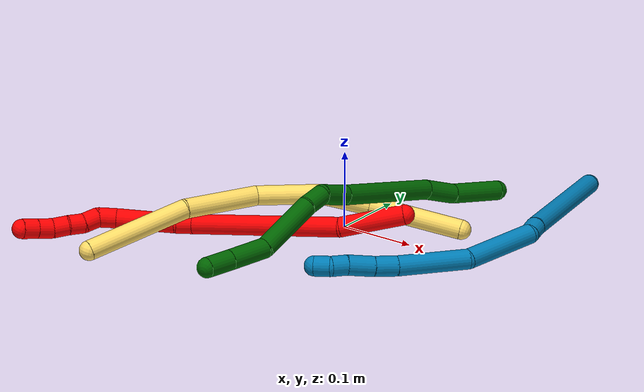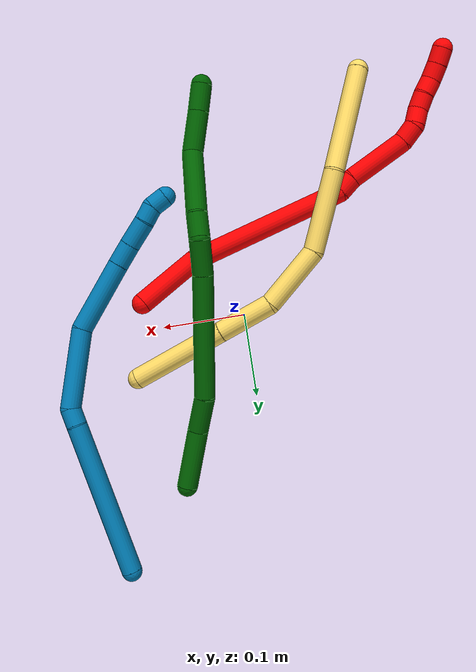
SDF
<sdf version="1.7">
 <world name="default">
  <model name="2">
   <static>0</static>
   <link name="2">
    <collision name="collision-cylinder-e_1_1_4">
     <pose>-0.026386 0.002567 0.030684 -0.083461 -0.708506 0.030884</pose>
     <geometry><cylinder><radius>0.0125</radius><length>0.081099</length></cylinder></geometry>
     <surface>
      <friction><ode><mu>1.16</mu><mu2>1.16</mu2><slip1>0</slip1><slip2>0</slip2></ode></friction>
      <contact><ode><kp>1e+06</kp><kd>1</kd><max_vel>0</max_vel><min_depth>0.001</min_depth></ode></contact>
     </surface>
    </collision>
    <visual name="visual-cylinder-e_1_1_4">
     <pose>-0.026386 0.002567 0.030684 -0.083461 -0.708506 0.030884</pose>
     <geometry><cylinder><radius>0.0125</radius><length>0.081099</length></cylinder></geometry>
     <material><ambient>1 0 0 1</ambient></material>
    </visual>
    <collision name="collision-cylinder-e_2_4_5">
     <pose>-0.094091 0.0217 0.14938 -0.186047 -0.432267 0.040962</pose>
     <geometry><cylinder><radius>0.0125</radius><length>0.197261</length></cylinder></geometry>
     <surface>
      <friction><ode><mu>1.16</mu><mu2>1.16</mu2><slip1>0</slip1><slip2>0</slip2></ode></friction>
      <contact><ode><kp>1e+06</kp><kd>1</kd><max_vel>0</max_vel><min_depth>0.001</min_depth></ode></contact>
     </surface>
    </collision>
    <visual name="visual-cylinder-e_2_4_5">
     <pose>-0.094091 0.0217 0.14938 -0.186047 -0.432267 0.040962</pose>
     <geometry><cylinder><radius>0.0125</radius><length>0.197261</length></cylinder></geometry>
     <material><ambient>1 0 0 1</ambient></material>
    </visual>
    <collision name="collision-cylinder-e_3_5_6">
     <pose>-0.141356 0.035654 0.246101 0.29137 -0.579216 -0.087388</pose>
     <geometry><cylinder><radius>0.0125</radius><length>0.021726</length></cylinder></geometry>
     <surface>
      <friction><ode><mu>1.16</mu><mu2>1.16</mu2><slip1>0</slip1><slip2>0</slip2></ode></friction>
      <contact><ode><kp>1e+06</kp><kd>1</kd><max_vel>0</max_vel><min_depth>0.001</min_depth></ode></contact>
     </surface>
    </collision>
    <visual name="visual-cylinder-e_3_5_6">
     <pose>-0.141356 0.035654 0.246101 0.29137 -0.579216 -0.087388</pose>
     <geometry><cylinder><radius>0.0125</radius><length>0.021726</length></cylinder></geometry>
     <material><ambient>1 0 0 1</ambient></material>
    </visual>
    <collision name="collision-cylinder-e_4_6_7">
     <pose>-0.164246 0.030833 0.28858 0.065351 -0.464169 -0.01545</pose>
     <geometry><cylinder><radius>0.0125</radius><length>0.075695</length></cylinder></geometry>
     <surface>
      <friction><ode><mu>1.16</mu><mu2>1.16</mu2><slip1>0</slip1><slip2>0</slip2></ode></friction>
      <contact><ode><kp>1e+06</kp><kd>1</kd><max_vel>0</max_vel><min_depth>0.001</min_depth></ode></contact>
     </surface>
    </collision>
    <visual name="visual-cylinder-e_4_6_7">
     <pose>-0.164246 0.030833 0.28858 0.065351 -0.464169 -0.01545</pose>
     <geometry><cylinder><radius>0.0125</radius><length>0.075695</length></cylinder></geometry>
     <material><ambient>1 0 0 1</ambient></material>
    </visual>
    <collision name="collision-cylinder-e_5_7_8">
     <pose>-0.18769 0.024674 0.331346 0.413641 -0.584571 -0.126104</pose>
     <geometry><cylinder><radius>0.0125</radius><length>0.023559</length></cylinder></geometry>
     <surface>
      <friction><ode><mu>1.16</mu><mu2>1.16</mu2><slip1>0</slip1><slip2>0</slip2></ode></friction>
      <contact><ode><kp>1e+06</kp><kd>1</kd><max_vel>0</max_vel><min_depth>0.001</min_depth></ode></contact>
     </surface>
    </collision>
    <visual name="visual-cylinder-e_5_7_8">
     <pose>-0.18769 0.024674 0.331346 0.413641 -0.584571 -0.126104</pose>
     <geometry><cylinder><radius>0.0125</radius><length>0.023559</length></cylinder></geometry>
     <material><ambient>1 0 0 1</ambient></material>
    </visual>
    <collision name="collision-cylinder-e_6_8_9">
     <pose>-0.203056 0.017227 0.344287 0.725324 -1.0341 -0.425028</pose>
     <geometry><cylinder><radius>0.0125</radius><length>0.020632</length></cylinder></geometry>
     <surface>
      <friction><ode><mu>1.16</mu><mu2>1.16</mu2><slip1>0</slip1><slip2>0</slip2></ode></friction>
      <contact><ode><kp>1e+06</kp><kd>1</kd><max_vel>0</max_vel><min_depth>0.001</min_depth></ode></contact>
     </surface>
    </collision>
    <visual name="visual-cylinder-e_6_8_9">
     <pose>-0.203056 0.017227 0.344287 0.725324 -1.0341 -0.425028</pose>
     <geometry><cylinder><radius>0.0125</radius><length>0.020632</length></cylinder></geometry>
     <material><ambient>1 0 0 1</ambient></material>
    </visual>
    <collision name="collision-cylinder-e_7_9_10">
     <pose>-0.218926 0.009168 0.353744 0.691304 -0.774996 -0.291855</pose>
     <geometry><cylinder><radius>0.0125</radius><length>0.020022</length></cylinder></geometry>
     <surface>
      <friction><ode><mu>1.16</mu><mu2>1.16</mu2><slip1>0</slip1><slip2>0</slip2></ode></friction>
      <contact><ode><kp>1e+06</kp><kd>1</kd><max_vel>0</max_vel><min_depth>0.001</min_depth></ode></contact>
     </surface>
    </collision>
    <visual name="visual-cylinder-e_7_9_10">
     <pose>-0.218926 0.009168 0.353744 0.691304 -0.774996 -0.291855</pose>
     <geometry><cylinder><radius>0.0125</radius><length>0.020022</length></cylinder></geometry>
     <material><ambient>1 0 0 1</ambient></material>
    </visual>
    <collision name="collision-cylinder-e_8_10_11">
     <pose>-0.233381 0.001555 0.365188 0.475139 -0.840381 -0.21554</pose>
     <geometry><cylinder><radius>0.0125</radius><length>0.020003</length></cylinder></geometry>
     <surface>
      <friction><ode><mu>1.16</mu><mu2>1.16</mu2><slip1>0</slip1><slip2>0</slip2></ode></friction>
      <contact><ode><kp>1e+06</kp><kd>1</kd><max_vel>0</max_vel><min_depth>0.001</min_depth></ode></contact>
     </surface>
    </collision>
    <visual name="visual-cylinder-e_8_10_11">
     <pose>-0.233381 0.001555 0.365188 0.475139 -0.840381 -0.21554</pose>
     <geometry><cylinder><radius>0.0125</radius><length>0.020003</length></cylinder></geometry>
     <material><ambient>1 0 0 1</ambient></material>
    </visual>
    <collision name="collision-cylinder-e_9_11_12">
     <pose>-0.247023 -0.00666 0.377039 0.717364 -0.667672 -0.258592</pose>
     <geometry><cylinder><radius>0.0125</radius><length>0.020001</length></cylinder></geometry>
     <surface>
      <friction><ode><mu>1.16</mu><mu2>1.16</mu2><slip1>0</slip1><slip2>0</slip2></ode></friction>
      <contact><ode><kp>1e+06</kp><kd>1</kd><max_vel>0</max_vel><min_depth>0.001</min_depth></ode></contact>
     </surface>
    </collision>
    <visual name="visual-cylinder-e_9_11_12">
     <pose>-0.247023 -0.00666 0.377039 0.717364 -0.667672 -0.258592</pose>
     <geometry><cylinder><radius>0.0125</radius><length>0.020001</length></cylinder></geometry>
     <material><ambient>1 0 0 1</ambient></material>
    </visual>
    <collision name="collision-cylinder-e_10_12_2">
     <pose>-0.259456 -0.017432 0.388398 0.80069 -0.673875 -0.294346</pose>
     <geometry><cylinder><radius>0.0125</radius><length>0.020001</length></cylinder></geometry>
     <surface>
      <friction><ode><mu>1.16</mu><mu2>1.16</mu2><slip1>0</slip1><slip2>0</slip2></ode></friction>
      <contact><ode><kp>1e+06</kp><kd>1</kd><max_vel>0</max_vel><min_depth>0.001</min_depth></ode></contact>
     </surface>
    </collision>
    <visual name="visual-cylinder-e_10_12_2">
     <pose>-0.259456 -0.017432 0.388398 0.80069 -0.673875 -0.294346</pose>
     <geometry><cylinder><radius>0.0125</radius><length>0.020001</length></cylinder></geometry>
     <material><ambient>1 0 0 1</ambient></material>
    </visual>
    <collision name="collision-sphere-2">
     <pose>-0.265696 -0.023042 0.393838 0 -0 0</pose>
     <geometry><sphere><radius>0.0125</radius></sphere></geometry>
     <surface>
      <friction><ode><mu>1.16</mu><mu2>1.16</mu2><slip1>0</slip1><slip2>0</slip2></ode></friction>
      <contact><ode><kp>1e+06</kp><kd>1</kd><max_vel>0</max_vel><min_depth>0.001</min_depth></ode></contact>
     </surface>
    </collision>
    <visual name="visual-sphere-2">
     <pose>-0.265696 -0.023042 0.393838 0 -0 0</pose>
     <geometry><sphere><radius>0.0125</radius></sphere></geometry>
     <material><ambient>1 0 0 1</ambient></material>
    </visual>
    <collision name="collision-sphere-12">
     <pose>-0.253215 -0.011822 0.382957 0 -0 0</pose>
     <geometry><sphere><radius>0.0125</radius></sphere></geometry>
     <surface>
      <friction><ode><mu>1.16</mu><mu2>1.16</mu2><slip1>0</slip1><slip2>0</slip2></ode></friction>
      <contact><ode><kp>1e+06</kp><kd>1</kd><max_vel>0</max_vel><min_depth>0.001</min_depth></ode></contact>
     </surface>
    </collision>
    <visual name="visual-sphere-12">
     <pose>-0.253215 -0.011822 0.382957 0 -0 0</pose>
     <geometry><sphere><radius>0.0125</radius></sphere></geometry>
     <material><ambient>1 0 0 1</ambient></material>
    </visual>
    <collision name="collision-sphere-11">
     <pose>-0.240831 -0.001497 0.371122 0 -0 0</pose>
     <geometry><sphere><radius>0.0125</radius></sphere></geometry>
     <surface>
      <friction><ode><mu>1.16</mu><mu2>1.16</mu2><slip1>0</slip1><slip2>0</slip2></ode></friction>
      <contact><ode><kp>1e+06</kp><kd>1</kd><max_vel>0</max_vel><min_depth>0.001</min_depth></ode></contact>
     </surface>
    </collision>
    <visual name="visual-sphere-11">
     <pose>-0.240831 -0.001497 0.371122 0 -0 0</pose>
     <geometry><sphere><radius>0.0125</radius></sphere></geometry>
     <material><ambient>1 0 0 1</ambient></material>
    </visual>
    <collision name="collision-sphere-10">
     <pose>-0.225931 0.004608 0.359255 0 -0 0</pose>
     <geometry><sphere><radius>0.0125</radius></sphere></geometry>
     <surface>
      <friction><ode><mu>1.16</mu><mu2>1.16</mu2><slip1>0</slip1><slip2>0</slip2></ode></friction>
      <contact><ode><kp>1e+06</kp><kd>1</kd><max_vel>0</max_vel><min_depth>0.001</min_depth></ode></contact>
     </surface>
    </collision>
    <visual name="visual-sphere-10">
     <pose>-0.225931 0.004608 0.359255 0 -0 0</pose>
     <geometry><sphere><radius>0.0125</radius></sphere></geometry>
     <material><ambient>1 0 0 1</ambient></material>
    </visual>
    <collision name="collision-sphere-9">
     <pose>-0.211921 0.013727 0.348234 0 -0 0</pose>
     <geometry><sphere><radius>0.0125</radius></sphere></geometry>
     <surface>
      <friction><ode><mu>1.16</mu><mu2>1.16</mu2><slip1>0</slip1><slip2>0</slip2></ode></friction>
      <contact><ode><kp>1e+06</kp><kd>1</kd><max_vel>0</max_vel><min_depth>0.001</min_depth></ode></contact>
     </surface>
    </collision>
    <visual name="visual-sphere-9">
     <pose>-0.211921 0.013727 0.348234 0 -0 0</pose>
     <geometry><sphere><radius>0.0125</radius></sphere></geometry>
     <material><ambient>1 0 0 1</ambient></material>
    </visual>
    <collision name="collision-sphere-4">
     <pose>-0.052771 0.005134 0.061367 0 -0 0</pose>
     <geometry><sphere><radius>0.0125</radius></sphere></geometry>
     <surface>
      <friction><ode><mu>1.16</mu><mu2>1.16</mu2><slip1>0</slip1><slip2>0</slip2></ode></friction>
      <contact><ode><kp>1e+06</kp><kd>1</kd><max_vel>0</max_vel><min_depth>0.001</min_depth></ode></contact>
     </surface>
    </collision>
    <visual name="visual-sphere-4">
     <pose>-0.052771 0.005134 0.061367 0 -0 0</pose>
     <geometry><sphere><radius>0.0125</radius></sphere></geometry>
     <material><ambient>1 0 0 1</ambient></material>
    </visual>
    <collision name="collision-sphere-1">
     <geometry><sphere><radius>0.0125</radius></sphere></geometry>
     <surface>
      <friction><ode><mu>1.16</mu><mu2>1.16</mu2><slip1>0</slip1><slip2>0</slip2></ode></friction>
      <contact><ode><kp>1e+06</kp><kd>1</kd><max_vel>0</max_vel><min_depth>0.001</min_depth></ode></contact>
     </surface>
    </collision>
    <visual name="visual-sphere-1">
     <geometry><sphere><radius>0.0125</radius></sphere></geometry>
     <material><ambient>1 0 0 1</ambient></material>
    </visual>
    <collision name="collision-sphere-8">
     <pose>-0.19419 0.020726 0.340341 0 -0 0</pose>
     <geometry><sphere><radius>0.0125</radius></sphere></geometry>
     <surface>
      <friction><ode><mu>1.16</mu><mu2>1.16</mu2><slip1>0</slip1><slip2>0</slip2></ode></friction>
      <contact><ode><kp>1e+06</kp><kd>1</kd><max_vel>0</max_vel><min_depth>0.001</min_depth></ode></contact>
     </surface>
    </collision>
    <visual name="visual-sphere-8">
     <pose>-0.19419 0.020726 0.340341 0 -0 0</pose>
     <geometry><sphere><radius>0.0125</radius></sphere></geometry>
     <material><ambient>1 0 0 1</ambient></material>
    </visual>
    <collision name="collision-sphere-5">
     <pose>-0.13541 0.038266 0.237393 0 -0 0</pose>
     <geometry><sphere><radius>0.0125</radius></sphere></geometry>
     <surface>
      <friction><ode><mu>1.16</mu><mu2>1.16</mu2><slip1>0</slip1><slip2>0</slip2></ode></friction>
      <contact><ode><kp>1e+06</kp><kd>1</kd><max_vel>0</max_vel><min_depth>0.001</min_depth></ode></contact>
     </surface>
    </collision>
    <visual name="visual-sphere-5">
     <pose>-0.13541 0.038266 0.237393 0 -0 0</pose>
     <geometry><sphere><radius>0.0125</radius></sphere></geometry>
     <material><ambient>1 0 0 1</ambient></material>
    </visual>
    <collision name="collision-sphere-6">
     <pose>-0.147302 0.033043 0.254809 0 -0 0</pose>
     <geometry><sphere><radius>0.0125</radius></sphere></geometry>
     <surface>
      <friction><ode><mu>1.16</mu><mu2>1.16</mu2><slip1>0</slip1><slip2>0</slip2></ode></friction>
      <contact><ode><kp>1e+06</kp><kd>1</kd><max_vel>0</max_vel><min_depth>0.001</min_depth></ode></contact>
     </surface>
    </collision>
    <visual name="visual-sphere-6">
     <pose>-0.147302 0.033043 0.254809 0 -0 0</pose>
     <geometry><sphere><radius>0.0125</radius></sphere></geometry>
     <material><ambient>1 0 0 1</ambient></material>
    </visual>
    <collision name="collision-sphere-7">
     <pose>-0.181189 0.028623 0.322351 0 -0 0</pose>
     <geometry><sphere><radius>0.0125</radius></sphere></geometry>
     <surface>
      <friction><ode><mu>1.16</mu><mu2>1.16</mu2><slip1>0</slip1><slip2>0</slip2></ode></friction>
      <contact><ode><kp>1e+06</kp><kd>1</kd><max_vel>0</max_vel><min_depth>0.001</min_depth></ode></contact>
     </surface>
    </collision>
    <visual name="visual-sphere-7">
     <pose>-0.181189 0.028623 0.322351 0 -0 0</pose>
     <geometry><sphere><radius>0.0125</radius></sphere></geometry>
     <material><ambient>1 0 0 1</ambient></material>
    </visual>
    <inertial>
     <pose>-0.127994 0.016533 0.207506 0 -0 0</pose>
     <mass>0.5</mass>
     <inertia>
      <ixx>0.000668</ixx>
      <ixy>0</ixy>
      <ixz>0</ixz>
      <iyy>0.000755</iyy>
      <iyz>0</iyz>
      <izz>0.000253</izz>
     </inertia>
    </inertial>
   </link>
   <pose>0.114865 -0.032076 0.054781 -1.16945 -0.700282 1.3952</pose>
  </model>
  <model name="5">
   <static>0</static>
   <link name="5">
    <collision name="collision-cylinder-e_1_1_4">
     <pose>-0.005665 -0.00168 0.058565 0.028677 -0.096385 -0.001383</pose>
     <geometry><cylinder><radius>0.0125</radius><length>0.117725</length></cylinder></geometry>
     <surface>
      <friction><ode><mu>1.16</mu><mu2>1.16</mu2><slip1>0</slip1><slip2>0</slip2></ode></friction>
      <contact><ode><kp>1e+06</kp><kd>1</kd><max_vel>0</max_vel><min_depth>0.001</min_depth></ode></contact>
     </surface>
    </collision>
    <visual name="visual-cylinder-e_1_1_4">
     <pose>-0.005665 -0.00168 0.058565 0.028677 -0.096385 -0.001383</pose>
     <geometry><cylinder><radius>0.0125</radius><length>0.117725</length></cylinder></geometry>
     <material><ambient>1 0.858824 0.4 1</ambient></material>
    </visual>
    <collision name="collision-cylinder-e_2_4_5">
     <pose>-0.015775 -0.004061 0.150837 0.020794 -0.131103 -0.001365</pose>
     <geometry><cylinder><radius>0.0125</radius><length>0.068011</length></cylinder></geometry>
     <surface>
      <friction><ode><mu>1.16</mu><mu2>1.16</mu2><slip1>0</slip1><slip2>0</slip2></ode></friction>
      <contact><ode><kp>1e+06</kp><kd>1</kd><max_vel>0</max_vel><min_depth>0.001</min_depth></ode></contact>
     </surface>
    </collision>
    <visual name="visual-cylinder-e_2_4_5">
     <pose>-0.015775 -0.004061 0.150837 0.020794 -0.131103 -0.001365</pose>
     <geometry><cylinder><radius>0.0125</radius><length>0.068011</length></cylinder></geometry>
     <material><ambient>1 0.858824 0.4 1</ambient></material>
    </visual>
    <collision name="collision-cylinder-e_3_5_6">
     <pose>-0.03278 -0.01836 0.220075 0.365504 -0.31887 -0.059419</pose>
     <geometry><cylinder><radius>0.0125</radius><length>0.08013</length></cylinder></geometry>
     <surface>
      <friction><ode><mu>1.16</mu><mu2>1.16</mu2><slip1>0</slip1><slip2>0</slip2></ode></friction>
      <contact><ode><kp>1e+06</kp><kd>1</kd><max_vel>0</max_vel><min_depth>0.001</min_depth></ode></contact>
     </surface>
    </collision>
    <visual name="visual-cylinder-e_3_5_6">
     <pose>-0.03278 -0.01836 0.220075 0.365504 -0.31887 -0.059419</pose>
     <geometry><cylinder><radius>0.0125</radius><length>0.08013</length></cylinder></geometry>
     <material><ambient>1 0.858824 0.4 1</ambient></material>
    </visual>
    <collision name="collision-cylinder-e_4_6_7">
     <pose>-0.061701 -0.066654 0.287227 0.831745 -0.335351 -0.149228</pose>
     <geometry><cylinder><radius>0.0125</radius><length>0.099423</length></cylinder></geometry>
     <surface>
      <friction><ode><mu>1.16</mu><mu2>1.16</mu2><slip1>0</slip1><slip2>0</slip2></ode></friction>
      <contact><ode><kp>1e+06</kp><kd>1</kd><max_vel>0</max_vel><min_depth>0.001</min_depth></ode></contact>
     </surface>
    </collision>
    <visual name="visual-cylinder-e_4_6_7">
     <pose>-0.061701 -0.066654 0.287227 0.831745 -0.335351 -0.149228</pose>
     <geometry><cylinder><radius>0.0125</radius><length>0.099423</length></cylinder></geometry>
     <material><ambient>1 0.858824 0.4 1</ambient></material>
    </visual>
    <collision name="collision-cylinder-e_5_7_2">
     <pose>-0.113931 -0.14401 0.356664 0.845502 -0.561618 -0.258074</pose>
     <geometry><cylinder><radius>0.0125</radius><length>0.134711</length></cylinder></geometry>
     <surface>
      <friction><ode><mu>1.16</mu><mu2>1.16</mu2><slip1>0</slip1><slip2>0</slip2></ode></friction>
      <contact><ode><kp>1e+06</kp><kd>1</kd><max_vel>0</max_vel><min_depth>0.001</min_depth></ode></contact>
     </surface>
    </collision>
    <visual name="visual-cylinder-e_5_7_2">
     <pose>-0.113931 -0.14401 0.356664 0.845502 -0.561618 -0.258074</pose>
     <geometry><cylinder><radius>0.0125</radius><length>0.134711</length></cylinder></geometry>
     <material><ambient>1 0.858824 0.4 1</ambient></material>
    </visual>
    <collision name="collision-sphere-2">
     <pose>-0.149802 -0.18667 0.394482 0 -0 0</pose>
     <geometry><sphere><radius>0.0125</radius></sphere></geometry>
     <surface>
      <friction><ode><mu>1.16</mu><mu2>1.16</mu2><slip1>0</slip1><slip2>0</slip2></ode></friction>
      <contact><ode><kp>1e+06</kp><kd>1</kd><max_vel>0</max_vel><min_depth>0.001</min_depth></ode></contact>
     </surface>
    </collision>
    <visual name="visual-sphere-2">
     <pose>-0.149802 -0.18667 0.394482 0 -0 0</pose>
     <geometry><sphere><radius>0.0125</radius></sphere></geometry>
     <material><ambient>1 0.858824 0.4 1</ambient></material>
    </visual>
    <collision name="collision-sphere-7">
     <pose>-0.078061 -0.101349 0.318847 0 -0 0</pose>
     <geometry><sphere><radius>0.0125</radius></sphere></geometry>
     <surface>
      <friction><ode><mu>1.16</mu><mu2>1.16</mu2><slip1>0</slip1><slip2>0</slip2></ode></friction>
      <contact><ode><kp>1e+06</kp><kd>1</kd><max_vel>0</max_vel><min_depth>0.001</min_depth></ode></contact>
     </surface>
    </collision>
    <visual name="visual-sphere-7">
     <pose>-0.078061 -0.101349 0.318847 0 -0 0</pose>
     <geometry><sphere><radius>0.0125</radius></sphere></geometry>
     <material><ambient>1 0.858824 0.4 1</ambient></material>
    </visual>
    <collision name="collision-sphere-6">
     <pose>-0.045341 -0.031958 0.255607 0 -0 0</pose>
     <geometry><sphere><radius>0.0125</radius></sphere></geometry>
     <surface>
      <friction><ode><mu>1.16</mu><mu2>1.16</mu2><slip1>0</slip1><slip2>0</slip2></ode></friction>
      <contact><ode><kp>1e+06</kp><kd>1</kd><max_vel>0</max_vel><min_depth>0.001</min_depth></ode></contact>
     </surface>
    </collision>
    <visual name="visual-sphere-6">
     <pose>-0.045341 -0.031958 0.255607 0 -0 0</pose>
     <geometry><sphere><radius>0.0125</radius></sphere></geometry>
     <material><ambient>1 0.858824 0.4 1</ambient></material>
    </visual>
    <collision name="collision-sphere-5">
     <pose>-0.02022 -0.004762 0.184543 0 -0 0</pose>
     <geometry><sphere><radius>0.0125</radius></sphere></geometry>
     <surface>
      <friction><ode><mu>1.16</mu><mu2>1.16</mu2><slip1>0</slip1><slip2>0</slip2></ode></friction>
      <contact><ode><kp>1e+06</kp><kd>1</kd><max_vel>0</max_vel><min_depth>0.001</min_depth></ode></contact>
     </surface>
    </collision>
    <visual name="visual-sphere-5">
     <pose>-0.02022 -0.004762 0.184543 0 -0 0</pose>
     <geometry><sphere><radius>0.0125</radius></sphere></geometry>
     <material><ambient>1 0.858824 0.4 1</ambient></material>
    </visual>
    <collision name="collision-sphere-1">
     <geometry><sphere><radius>0.0125</radius></sphere></geometry>
     <surface>
      <friction><ode><mu>1.16</mu><mu2>1.16</mu2><slip1>0</slip1><slip2>0</slip2></ode></friction>
      <contact><ode><kp>1e+06</kp><kd>1</kd><max_vel>0</max_vel><min_depth>0.001</min_depth></ode></contact>
     </surface>
    </collision>
    <visual name="visual-sphere-1">
     <geometry><sphere><radius>0.0125</radius></sphere></geometry>
     <material><ambient>1 0.858824 0.4 1</ambient></material>
    </visual>
    <collision name="collision-sphere-4">
     <pose>-0.011329 -0.00336 0.11713 0 -0 0</pose>
     <geometry><sphere><radius>0.0125</radius></sphere></geometry>
     <surface>
      <friction><ode><mu>1.16</mu><mu2>1.16</mu2><slip1>0</slip1><slip2>0</slip2></ode></friction>
      <contact><ode><kp>1e+06</kp><kd>1</kd><max_vel>0</max_vel><min_depth>0.001</min_depth></ode></contact>
     </surface>
    </collision>
    <visual name="visual-sphere-4">
     <pose>-0.011329 -0.00336 0.11713 0 -0 0</pose>
     <geometry><sphere><radius>0.0125</radius></sphere></geometry>
     <material><ambient>1 0.858824 0.4 1</ambient></material>
    </visual>
    <inertial>
     <pose>-0.051698 -0.055944 0.222783 0 -0 0</pose>
     <mass>0.5</mass>
     <inertia>
      <ixx>0.000392</ixx>
      <ixy>0</ixy>
      <ixz>0</ixz>
      <iyy>0.000354</iyy>
      <iyz>0</iyz>
      <izz>0.000415</izz>
     </inertia>
    </inertial>
   </link>
   <pose>0.13915 0.055947 0.012497 -0.794811 -1.22032 1.12815</pose>
  </model>
  <model name="6">
   <static>0</static>
   <link name="6">
    <collision name="collision-cylinder-e_1_1_4">
     <pose>0.008102 -0.019838 0.028621 0.606092 0.2286 0.07176</pose>
     <geometry><cylinder><radius>0.0125</radius><length>0.071508</length></cylinder></geometry>
     <surface>
      <friction><ode><mu>1.16</mu><mu2>1.16</mu2><slip1>0</slip1><slip2>0</slip2></ode></friction>
      <contact><ode><kp>1e+06</kp><kd>1</kd><max_vel>0</max_vel><min_depth>0.001</min_depth></ode></contact>
     </surface>
    </collision>
    <visual name="visual-cylinder-e_1_1_4">
     <pose>0.008102 -0.019838 0.028621 0.606092 0.2286 0.07176</pose>
     <geometry><cylinder><radius>0.0125</radius><length>0.071508</length></cylinder></geometry>
     <material><ambient>0 0.392157 0.003922 1</ambient></material>
    </visual>
    <collision name="collision-cylinder-e_2_4_5">
     <pose>0.019021 -0.054712 0.073118 0.758233 0.128095 0.05109</pose>
     <geometry><cylinder><radius>0.0125</radius><length>0.044095</length></cylinder></geometry>
     <surface>
      <friction><ode><mu>1.16</mu><mu2>1.16</mu2><slip1>0</slip1><slip2>0</slip2></ode></friction>
      <contact><ode><kp>1e+06</kp><kd>1</kd><max_vel>0</max_vel><min_depth>0.001</min_depth></ode></contact>
     </surface>
    </collision>
    <visual name="visual-cylinder-e_2_4_5">
     <pose>0.019021 -0.054712 0.073118 0.758233 0.128095 0.05109</pose>
     <geometry><cylinder><radius>0.0125</radius><length>0.044095</length></cylinder></geometry>
     <material><ambient>0 0.392157 0.003922 1</ambient></material>
    </visual>
    <collision name="collision-cylinder-e_3_5_6">
     <pose>0.024218 -0.10789 0.152099 0.543673 0.03227 0.008995</pose>
     <geometry><cylinder><radius>0.0125</radius><length>0.147548</length></cylinder></geometry>
     <surface>
      <friction><ode><mu>1.16</mu><mu2>1.16</mu2><slip1>0</slip1><slip2>0</slip2></ode></friction>
      <contact><ode><kp>1e+06</kp><kd>1</kd><max_vel>0</max_vel><min_depth>0.001</min_depth></ode></contact>
     </surface>
    </collision>
    <visual name="visual-cylinder-e_3_5_6">
     <pose>0.024218 -0.10789 0.152099 0.543673 0.03227 0.008995</pose>
     <geometry><cylinder><radius>0.0125</radius><length>0.147548</length></cylinder></geometry>
     <material><ambient>0 0.392157 0.003922 1</ambient></material>
    </visual>
    <collision name="collision-cylinder-e_4_6_7">
     <pose>0.02496 -0.157579 0.233225 0.569809 -0.076398 -0.022385</pose>
     <geometry><cylinder><radius>0.0125</radius><length>0.042934</length></cylinder></geometry>
     <surface>
      <friction><ode><mu>1.16</mu><mu2>1.16</mu2><slip1>0</slip1><slip2>0</slip2></ode></friction>
      <contact><ode><kp>1e+06</kp><kd>1</kd><max_vel>0</max_vel><min_depth>0.001</min_depth></ode></contact>
     </surface>
    </collision>
    <visual name="visual-cylinder-e_4_6_7">
     <pose>0.02496 -0.157579 0.233225 0.569809 -0.076398 -0.022385</pose>
     <geometry><cylinder><radius>0.0125</radius><length>0.042934</length></cylinder></geometry>
     <material><ambient>0 0.392157 0.003922 1</ambient></material>
    </visual>
    <collision name="collision-cylinder-e_5_7_8">
     <pose>0.025927 -0.171032 0.265645 0.13161 0.177517 0.011729</pose>
     <geometry><cylinder><radius>0.0125</radius><length>0.029509</length></cylinder></geometry>
     <surface>
      <friction><ode><mu>1.16</mu><mu2>1.16</mu2><slip1>0</slip1><slip2>0</slip2></ode></friction>
      <contact><ode><kp>1e+06</kp><kd>1</kd><max_vel>0</max_vel><min_depth>0.001</min_depth></ode></contact>
     </surface>
    </collision>
    <visual name="visual-cylinder-e_5_7_8">
     <pose>0.025927 -0.171032 0.265645 0.13161 0.177517 0.011729</pose>
     <geometry><cylinder><radius>0.0125</radius><length>0.029509</length></cylinder></geometry>
     <material><ambient>0 0.392157 0.003922 1</ambient></material>
    </visual>
    <collision name="collision-cylinder-e_6_8_9">
     <pose>0.040784 -0.172257 0.318873 -0.017531 0.305596 -0.0027</pose>
     <geometry><cylinder><radius>0.0125</radius><length>0.081448</length></cylinder></geometry>
     <surface>
      <friction><ode><mu>1.16</mu><mu2>1.16</mu2><slip1>0</slip1><slip2>0</slip2></ode></friction>
      <contact><ode><kp>1e+06</kp><kd>1</kd><max_vel>0</max_vel><min_depth>0.001</min_depth></ode></contact>
     </surface>
    </collision>
    <visual name="visual-cylinder-e_6_8_9">
     <pose>0.040784 -0.172257 0.318873 -0.017531 0.305596 -0.0027</pose>
     <geometry><cylinder><radius>0.0125</radius><length>0.081448</length></cylinder></geometry>
     <material><ambient>0 0.392157 0.003922 1</ambient></material>
    </visual>
    <collision name="collision-cylinder-e_7_9_10">
     <pose>0.060553 -0.180753 0.37963 0.396371 0.306269 0.061971</pose>
     <geometry><cylinder><radius>0.0125</radius><length>0.049858</length></cylinder></geometry>
     <surface>
      <friction><ode><mu>1.16</mu><mu2>1.16</mu2><slip1>0</slip1><slip2>0</slip2></ode></friction>
      <contact><ode><kp>1e+06</kp><kd>1</kd><max_vel>0</max_vel><min_depth>0.001</min_depth></ode></contact>
     </surface>
    </collision>
    <visual name="visual-cylinder-e_7_9_10">
     <pose>0.060553 -0.180753 0.37963 0.396371 0.306269 0.061971</pose>
     <geometry><cylinder><radius>0.0125</radius><length>0.049858</length></cylinder></geometry>
     <material><ambient>0 0.392157 0.003922 1</ambient></material>
    </visual>
    <collision name="collision-cylinder-e_8_10_2">
     <pose>0.072638 -0.196194 0.416178 0.404786 0.279702 0.057757</pose>
     <geometry><cylinder><radius>0.0125</radius><length>0.033101</length></cylinder></geometry>
     <surface>
      <friction><ode><mu>1.16</mu><mu2>1.16</mu2><slip1>0</slip1><slip2>0</slip2></ode></friction>
      <contact><ode><kp>1e+06</kp><kd>1</kd><max_vel>0</max_vel><min_depth>0.001</min_depth></ode></contact>
     </surface>
    </collision>
    <visual name="visual-cylinder-e_8_10_2">
     <pose>0.072638 -0.196194 0.416178 0.404786 0.279702 0.057757</pose>
     <geometry><cylinder><radius>0.0125</radius><length>0.033101</length></cylinder></geometry>
     <material><ambient>0 0.392157 0.003922 1</ambient></material>
    </visual>
    <collision name="collision-sphere-2">
     <pose>0.077207 -0.202459 0.4308 0 -0 0</pose>
     <geometry><sphere><radius>0.0125</radius></sphere></geometry>
     <surface>
      <friction><ode><mu>1.16</mu><mu2>1.16</mu2><slip1>0</slip1><slip2>0</slip2></ode></friction>
      <contact><ode><kp>1e+06</kp><kd>1</kd><max_vel>0</max_vel><min_depth>0.001</min_depth></ode></contact>
     </surface>
    </collision>
    <visual name="visual-sphere-2">
     <pose>0.077207 -0.202459 0.4308 0 -0 0</pose>
     <geometry><sphere><radius>0.0125</radius></sphere></geometry>
     <material><ambient>0 0.392157 0.003922 1</ambient></material>
    </visual>
    <collision name="collision-sphere-10">
     <pose>0.068069 -0.189929 0.401556 0 -0 0</pose>
     <geometry><sphere><radius>0.0125</radius></sphere></geometry>
     <surface>
      <friction><ode><mu>1.16</mu><mu2>1.16</mu2><slip1>0</slip1><slip2>0</slip2></ode></friction>
      <contact><ode><kp>1e+06</kp><kd>1</kd><max_vel>0</max_vel><min_depth>0.001</min_depth></ode></contact>
     </surface>
    </collision>
    <visual name="visual-sphere-10">
     <pose>0.068069 -0.189929 0.401556 0 -0 0</pose>
     <geometry><sphere><radius>0.0125</radius></sphere></geometry>
     <material><ambient>0 0.392157 0.003922 1</ambient></material>
    </visual>
    <collision name="collision-sphere-9">
     <pose>0.053037 -0.171576 0.357704 0 -0 0</pose>
     <geometry><sphere><radius>0.0125</radius></sphere></geometry>
     <surface>
      <friction><ode><mu>1.16</mu><mu2>1.16</mu2><slip1>0</slip1><slip2>0</slip2></ode></friction>
      <contact><ode><kp>1e+06</kp><kd>1</kd><max_vel>0</max_vel><min_depth>0.001</min_depth></ode></contact>
     </surface>
    </collision>
    <visual name="visual-sphere-9">
     <pose>0.053037 -0.171576 0.357704 0 -0 0</pose>
     <geometry><sphere><radius>0.0125</radius></sphere></geometry>
     <material><ambient>0 0.392157 0.003922 1</ambient></material>
    </visual>
    <collision name="collision-sphere-4">
     <pose>0.016205 -0.039675 0.057242 0 -0 0</pose>
     <geometry><sphere><radius>0.0125</radius></sphere></geometry>
     <surface>
      <friction><ode><mu>1.16</mu><mu2>1.16</mu2><slip1>0</slip1><slip2>0</slip2></ode></friction>
      <contact><ode><kp>1e+06</kp><kd>1</kd><max_vel>0</max_vel><min_depth>0.001</min_depth></ode></contact>
     </surface>
    </collision>
    <visual name="visual-sphere-4">
     <pose>0.016205 -0.039675 0.057242 0 -0 0</pose>
     <geometry><sphere><radius>0.0125</radius></sphere></geometry>
     <material><ambient>0 0.392157 0.003922 1</ambient></material>
    </visual>
    <collision name="collision-sphere-1">
     <geometry><sphere><radius>0.0125</radius></sphere></geometry>
     <surface>
      <friction><ode><mu>1.16</mu><mu2>1.16</mu2><slip1>0</slip1><slip2>0</slip2></ode></friction>
      <contact><ode><kp>1e+06</kp><kd>1</kd><max_vel>0</max_vel><min_depth>0.001</min_depth></ode></contact>
     </surface>
    </collision>
    <visual name="visual-sphere-1">
     <geometry><sphere><radius>0.0125</radius></sphere></geometry>
     <material><ambient>0 0.392157 0.003922 1</ambient></material>
    </visual>
    <collision name="collision-sphere-8">
     <pose>0.028532 -0.172938 0.280042 0 -0 0</pose>
     <geometry><sphere><radius>0.0125</radius></sphere></geometry>
     <surface>
      <friction><ode><mu>1.16</mu><mu2>1.16</mu2><slip1>0</slip1><slip2>0</slip2></ode></friction>
      <contact><ode><kp>1e+06</kp><kd>1</kd><max_vel>0</max_vel><min_depth>0.001</min_depth></ode></contact>
     </surface>
    </collision>
    <visual name="visual-sphere-8">
     <pose>0.028532 -0.172938 0.280042 0 -0 0</pose>
     <geometry><sphere><radius>0.0125</radius></sphere></geometry>
     <material><ambient>0 0.392157 0.003922 1</ambient></material>
    </visual>
    <collision name="collision-sphere-5">
     <pose>0.021838 -0.069748 0.088995 0 -0 0</pose>
     <geometry><sphere><radius>0.0125</radius></sphere></geometry>
     <surface>
      <friction><ode><mu>1.16</mu><mu2>1.16</mu2><slip1>0</slip1><slip2>0</slip2></ode></friction>
      <contact><ode><kp>1e+06</kp><kd>1</kd><max_vel>0</max_vel><min_depth>0.001</min_depth></ode></contact>
     </surface>
    </collision>
    <visual name="visual-sphere-5">
     <pose>0.021838 -0.069748 0.088995 0 -0 0</pose>
     <geometry><sphere><radius>0.0125</radius></sphere></geometry>
     <material><ambient>0 0.392157 0.003922 1</ambient></material>
    </visual>
    <collision name="collision-sphere-6">
     <pose>0.026598 -0.146032 0.215202 0 -0 0</pose>
     <geometry><sphere><radius>0.0125</radius></sphere></geometry>
     <surface>
      <friction><ode><mu>1.16</mu><mu2>1.16</mu2><slip1>0</slip1><slip2>0</slip2></ode></friction>
      <contact><ode><kp>1e+06</kp><kd>1</kd><max_vel>0</max_vel><min_depth>0.001</min_depth></ode></contact>
     </surface>
    </collision>
    <visual name="visual-sphere-6">
     <pose>0.026598 -0.146032 0.215202 0 -0 0</pose>
     <geometry><sphere><radius>0.0125</radius></sphere></geometry>
     <material><ambient>0 0.392157 0.003922 1</ambient></material>
    </visual>
    <collision name="collision-sphere-7">
     <pose>0.023321 -0.169126 0.251247 0 -0 0</pose>
     <geometry><sphere><radius>0.0125</radius></sphere></geometry>
     <surface>
      <friction><ode><mu>1.16</mu><mu2>1.16</mu2><slip1>0</slip1><slip2>0</slip2></ode></friction>
      <contact><ode><kp>1e+06</kp><kd>1</kd><max_vel>0</max_vel><min_depth>0.001</min_depth></ode></contact>
     </surface>
    </collision>
    <visual name="visual-sphere-7">
     <pose>0.023321 -0.169126 0.251247 0 -0 0</pose>
     <geometry><sphere><radius>0.0125</radius></sphere></geometry>
     <material><ambient>0 0.392157 0.003922 1</ambient></material>
    </visual>
    <inertial>
     <pose>0.031147 -0.122197 0.208479 0 -0 0</pose>
     <mass>0.5</mass>
     <inertia><ixx>0.0004</ixx><ixy>0</ixy><ixz>0</ixz><iyy>0.000332</iyy><iyz>0</iyz><izz>0.000173</izz></inertia>
    </inertial>
   </link>
   <pose>0.100625 0.194415 0.012464 -1.82325 0.608784 -3.09877</pose>
  </model>
  <model name="9">
   <static>0</static>
   <link name="9">
    <collision name="collision-cylinder-e_1_1_4">
     <pose>0.035585 -0.062373 -0.061765 2.35129 0.38514 0.874612</pose>
     <geometry><cylinder><radius>0.0125</radius><length>0.189437</length></cylinder></geometry>
     <surface>
      <friction><ode><mu>1.16</mu><mu2>1.16</mu2><slip1>0</slip1><slip2>0</slip2></ode></friction>
      <contact><ode><kp>1e+06</kp><kd>1</kd><max_vel>0</max_vel><min_depth>0.001</min_depth></ode></contact>
     </surface>
    </collision>
    <visual name="visual-cylinder-e_1_1_4">
     <pose>0.035585 -0.062373 -0.061765 2.35129 0.38514 0.874612</pose>
     <geometry><cylinder><radius>0.0125</radius><length>0.189437</length></cylinder></geometry>
     <material><ambient>0 0.490196 0.709804 1</ambient></material>
    </visual>
    <collision name="collision-cylinder-e_2_4_5">
     <pose>0.075786 -0.130663 -0.131171 2.48272 0.445702 1.17067</pose>
     <geometry><cylinder><radius>0.0125</radius><length>0.02142</length></cylinder></geometry>
     <surface>
      <friction><ode><mu>1.16</mu><mu2>1.16</mu2><slip1>0</slip1><slip2>0</slip2></ode></friction>
      <contact><ode><kp>1e+06</kp><kd>1</kd><max_vel>0</max_vel><min_depth>0.001</min_depth></ode></contact>
     </surface>
    </collision>
    <visual name="visual-cylinder-e_2_4_5">
     <pose>0.075786 -0.130663 -0.131171 2.48272 0.445702 1.17067</pose>
     <geometry><cylinder><radius>0.0125</radius><length>0.02142</length></cylinder></geometry>
     <material><ambient>0 0.490196 0.709804 1</ambient></material>
    </visual>
    <collision name="collision-cylinder-e_3_5_6">
     <pose>0.07856 -0.160791 -0.180973 2.62031 -0.037897 -0.141871</pose>
     <geometry><cylinder><radius>0.0125</radius><length>0.097307</length></cylinder></geometry>
     <surface>
      <friction><ode><mu>1.16</mu><mu2>1.16</mu2><slip1>0</slip1><slip2>0</slip2></ode></friction>
      <contact><ode><kp>1e+06</kp><kd>1</kd><max_vel>0</max_vel><min_depth>0.001</min_depth></ode></contact>
     </surface>
    </collision>
    <visual name="visual-cylinder-e_3_5_6">
     <pose>0.07856 -0.160791 -0.180973 2.62031 -0.037897 -0.141871</pose>
     <geometry><cylinder><radius>0.0125</radius><length>0.097307</length></cylinder></geometry>
     <material><ambient>0 0.490196 0.709804 1</ambient></material>
    </visual>
    <collision name="collision-cylinder-e_4_6_7">
     <pose>0.057637 -0.205012 -0.258626 2.62823 -0.43795 -1.40652</pose>
     <geometry><cylinder><radius>0.0125</radius><length>0.089979</length></cylinder></geometry>
     <surface>
      <friction><ode><mu>1.16</mu><mu2>1.16</mu2><slip1>0</slip1><slip2>0</slip2></ode></friction>
      <contact><ode><kp>1e+06</kp><kd>1</kd><max_vel>0</max_vel><min_depth>0.001</min_depth></ode></contact>
     </surface>
    </collision>
    <visual name="visual-cylinder-e_4_6_7">
     <pose>0.057637 -0.205012 -0.258626 2.62823 -0.43795 -1.40652</pose>
     <geometry><cylinder><radius>0.0125</radius><length>0.089979</length></cylinder></geometry>
     <material><ambient>0 0.490196 0.709804 1</ambient></material>
    </visual>
    <collision name="collision-cylinder-e_5_7_8">
     <pose>0.031951 -0.23191 -0.304676 2.56355 -0.482715 -1.38298</pose>
     <geometry><cylinder><radius>0.0125</radius><length>0.028467</length></cylinder></geometry>
     <surface>
      <friction><ode><mu>1.16</mu><mu2>1.16</mu2><slip1>0</slip1><slip2>0</slip2></ode></friction>
      <contact><ode><kp>1e+06</kp><kd>1</kd><max_vel>0</max_vel><min_depth>0.001</min_depth></ode></contact>
     </surface>
    </collision>
    <visual name="visual-cylinder-e_5_7_8">
     <pose>0.031951 -0.23191 -0.304676 2.56355 -0.482715 -1.38298</pose>
     <geometry><cylinder><radius>0.0125</radius><length>0.028467</length></cylinder></geometry>
     <material><ambient>0 0.490196 0.709804 1</ambient></material>
    </visual>
    <collision name="collision-cylinder-e_6_8_9">
     <pose>0.016928 -0.247349 -0.326755 2.50311 -0.530554 -1.37591</pose>
     <geometry><cylinder><radius>0.0125</radius><length>0.033267</length></cylinder></geometry>
     <surface>
      <friction><ode><mu>1.16</mu><mu2>1.16</mu2><slip1>0</slip1><slip2>0</slip2></ode></friction>
      <contact><ode><kp>1e+06</kp><kd>1</kd><max_vel>0</max_vel><min_depth>0.001</min_depth></ode></contact>
     </surface>
    </collision>
    <visual name="visual-cylinder-e_6_8_9">
     <pose>0.016928 -0.247349 -0.326755 2.50311 -0.530554 -1.37591</pose>
     <geometry><cylinder><radius>0.0125</radius><length>0.033267</length></cylinder></geometry>
     <material><ambient>0 0.490196 0.709804 1</ambient></material>
    </visual>
    <collision name="collision-cylinder-e_7_9_10">
     <pose>0.004393 -0.260596 -0.346142 2.60333 -0.422373 -1.32144</pose>
     <geometry><cylinder><radius>0.0125</radius><length>0.020089</length></cylinder></geometry>
     <surface>
      <friction><ode><mu>1.16</mu><mu2>1.16</mu2><slip1>0</slip1><slip2>0</slip2></ode></friction>
      <contact><ode><kp>1e+06</kp><kd>1</kd><max_vel>0</max_vel><min_depth>0.001</min_depth></ode></contact>
     </surface>
    </collision>
    <visual name="visual-cylinder-e_7_9_10">
     <pose>0.004393 -0.260596 -0.346142 2.60333 -0.422373 -1.32144</pose>
     <geometry><cylinder><radius>0.0125</radius><length>0.020089</length></cylinder></geometry>
     <material><ambient>0 0.490196 0.709804 1</ambient></material>
    </visual>
    <collision name="collision-cylinder-e_8_10_2">
     <pose>-0.006924 -0.26749 -0.360617 2.82055 -0.801944 -2.41194</pose>
     <geometry><cylinder><radius>0.0125</radius><length>0.020034</length></cylinder></geometry>
     <surface>
      <friction><ode><mu>1.16</mu><mu2>1.16</mu2><slip1>0</slip1><slip2>0</slip2></ode></friction>
      <contact><ode><kp>1e+06</kp><kd>1</kd><max_vel>0</max_vel><min_depth>0.001</min_depth></ode></contact>
     </surface>
    </collision>
    <visual name="visual-cylinder-e_8_10_2">
     <pose>-0.006924 -0.26749 -0.360617 2.82055 -0.801944 -2.41194</pose>
     <geometry><cylinder><radius>0.0125</radius><length>0.020034</length></cylinder></geometry>
     <material><ambient>0 0.490196 0.709804 1</ambient></material>
    </visual>
    <collision name="collision-sphere-2">
     <pose>-0.014123 -0.269688 -0.367227 0 -0 0</pose>
     <geometry><sphere><radius>0.0125</radius></sphere></geometry>
     <surface>
      <friction><ode><mu>1.16</mu><mu2>1.16</mu2><slip1>0</slip1><slip2>0</slip2></ode></friction>
      <contact><ode><kp>1e+06</kp><kd>1</kd><max_vel>0</max_vel><min_depth>0.001</min_depth></ode></contact>
     </surface>
    </collision>
    <visual name="visual-sphere-2">
     <pose>-0.014123 -0.269688 -0.367227 0 -0 0</pose>
     <geometry><sphere><radius>0.0125</radius></sphere></geometry>
     <material><ambient>0 0.490196 0.709804 1</ambient></material>
    </visual>
    <collision name="collision-sphere-10">
     <pose>0.000276 -0.265292 -0.354008 0 -0 0</pose>
     <geometry><sphere><radius>0.0125</radius></sphere></geometry>
     <surface>
      <friction><ode><mu>1.16</mu><mu2>1.16</mu2><slip1>0</slip1><slip2>0</slip2></ode></friction>
      <contact><ode><kp>1e+06</kp><kd>1</kd><max_vel>0</max_vel><min_depth>0.001</min_depth></ode></contact>
     </surface>
    </collision>
    <visual name="visual-sphere-10">
     <pose>0.000276 -0.265292 -0.354008 0 -0 0</pose>
     <geometry><sphere><radius>0.0125</radius></sphere></geometry>
     <material><ambient>0 0.490196 0.709804 1</ambient></material>
    </visual>
    <collision name="collision-sphere-9">
     <pose>0.008511 -0.255899 -0.338276 0 -0 0</pose>
     <geometry><sphere><radius>0.0125</radius></sphere></geometry>
     <surface>
      <friction><ode><mu>1.16</mu><mu2>1.16</mu2><slip1>0</slip1><slip2>0</slip2></ode></friction>
      <contact><ode><kp>1e+06</kp><kd>1</kd><max_vel>0</max_vel><min_depth>0.001</min_depth></ode></contact>
     </surface>
    </collision>
    <visual name="visual-sphere-9">
     <pose>0.008511 -0.255899 -0.338276 0 -0 0</pose>
     <geometry><sphere><radius>0.0125</radius></sphere></geometry>
     <material><ambient>0 0.490196 0.709804 1</ambient></material>
    </visual>
    <collision name="collision-sphere-4">
     <pose>0.071169 -0.124747 -0.12353 0 -0 0</pose>
     <geometry><sphere><radius>0.0125</radius></sphere></geometry>
     <surface>
      <friction><ode><mu>1.16</mu><mu2>1.16</mu2><slip1>0</slip1><slip2>0</slip2></ode></friction>
      <contact><ode><kp>1e+06</kp><kd>1</kd><max_vel>0</max_vel><min_depth>0.001</min_depth></ode></contact>
     </surface>
    </collision>
    <visual name="visual-sphere-4">
     <pose>0.071169 -0.124747 -0.12353 0 -0 0</pose>
     <geometry><sphere><radius>0.0125</radius></sphere></geometry>
     <material><ambient>0 0.490196 0.709804 1</ambient></material>
    </visual>
    <collision name="collision-sphere-1">
     <geometry><sphere><radius>0.0125</radius></sphere></geometry>
     <surface>
      <friction><ode><mu>1.16</mu><mu2>1.16</mu2><slip1>0</slip1><slip2>0</slip2></ode></friction>
      <contact><ode><kp>1e+06</kp><kd>1</kd><max_vel>0</max_vel><min_depth>0.001</min_depth></ode></contact>
     </surface>
    </collision>
    <visual name="visual-sphere-1">
     <geometry><sphere><radius>0.0125</radius></sphere></geometry>
     <material><ambient>0 0.490196 0.709804 1</ambient></material>
    </visual>
    <collision name="collision-sphere-8">
     <pose>0.025344 -0.238798 -0.315235 0 -0 0</pose>
     <geometry><sphere><radius>0.0125</radius></sphere></geometry>
     <surface>
      <friction><ode><mu>1.16</mu><mu2>1.16</mu2><slip1>0</slip1><slip2>0</slip2></ode></friction>
      <contact><ode><kp>1e+06</kp><kd>1</kd><max_vel>0</max_vel><min_depth>0.001</min_depth></ode></contact>
     </surface>
    </collision>
    <visual name="visual-sphere-8">
     <pose>0.025344 -0.238798 -0.315235 0 -0 0</pose>
     <geometry><sphere><radius>0.0125</radius></sphere></geometry>
     <material><ambient>0 0.490196 0.709804 1</ambient></material>
    </visual>
    <collision name="collision-sphere-5">
     <pose>0.080403 -0.13658 -0.138811 0 -0 0</pose>
     <geometry><sphere><radius>0.0125</radius></sphere></geometry>
     <surface>
      <friction><ode><mu>1.16</mu><mu2>1.16</mu2><slip1>0</slip1><slip2>0</slip2></ode></friction>
      <contact><ode><kp>1e+06</kp><kd>1</kd><max_vel>0</max_vel><min_depth>0.001</min_depth></ode></contact>
     </surface>
    </collision>
    <visual name="visual-sphere-5">
     <pose>0.080403 -0.13658 -0.138811 0 -0 0</pose>
     <geometry><sphere><radius>0.0125</radius></sphere></geometry>
     <material><ambient>0 0.490196 0.709804 1</ambient></material>
    </visual>
    <collision name="collision-sphere-6">
     <pose>0.076717 -0.185003 -0.223134 0 -0 0</pose>
     <geometry><sphere><radius>0.0125</radius></sphere></geometry>
     <surface>
      <friction><ode><mu>1.16</mu><mu2>1.16</mu2><slip1>0</slip1><slip2>0</slip2></ode></friction>
      <contact><ode><kp>1e+06</kp><kd>1</kd><max_vel>0</max_vel><min_depth>0.001</min_depth></ode></contact>
     </surface>
    </collision>
    <visual name="visual-sphere-6">
     <pose>0.076717 -0.185003 -0.223134 0 -0 0</pose>
     <geometry><sphere><radius>0.0125</radius></sphere></geometry>
     <material><ambient>0 0.490196 0.709804 1</ambient></material>
    </visual>
    <collision name="collision-sphere-7">
     <pose>0.038558 -0.225022 -0.294117 0 -0 0</pose>
     <geometry><sphere><radius>0.0125</radius></sphere></geometry>
     <surface>
      <friction><ode><mu>1.16</mu><mu2>1.16</mu2><slip1>0</slip1><slip2>0</slip2></ode></friction>
      <contact><ode><kp>1e+06</kp><kd>1</kd><max_vel>0</max_vel><min_depth>0.001</min_depth></ode></contact>
     </surface>
    </collision>
    <visual name="visual-sphere-7">
     <pose>0.038558 -0.225022 -0.294117 0 -0 0</pose>
     <geometry><sphere><radius>0.0125</radius></sphere></geometry>
     <material><ambient>0 0.490196 0.709804 1</ambient></material>
    </visual>
    <inertial>
     <pose>0.045234 -0.148264 -0.178225 0 -0 0</pose>
     <mass>0.5</mass>
     <inertia>
      <ixx>0.000763</ixx>
      <ixy>0</ixy>
      <ixz>0</ixz>
      <iyy>0.000107</iyy>
      <iyz>0</iyz>
      <izz>0.000243</izz>
     </inertia>
    </inertial>
   </link>
   <pose>0.183252 0.2855 0.012309 -0.94326 0.249373 -0.218639</pose>
  </model>
 </world>
</sdf>
